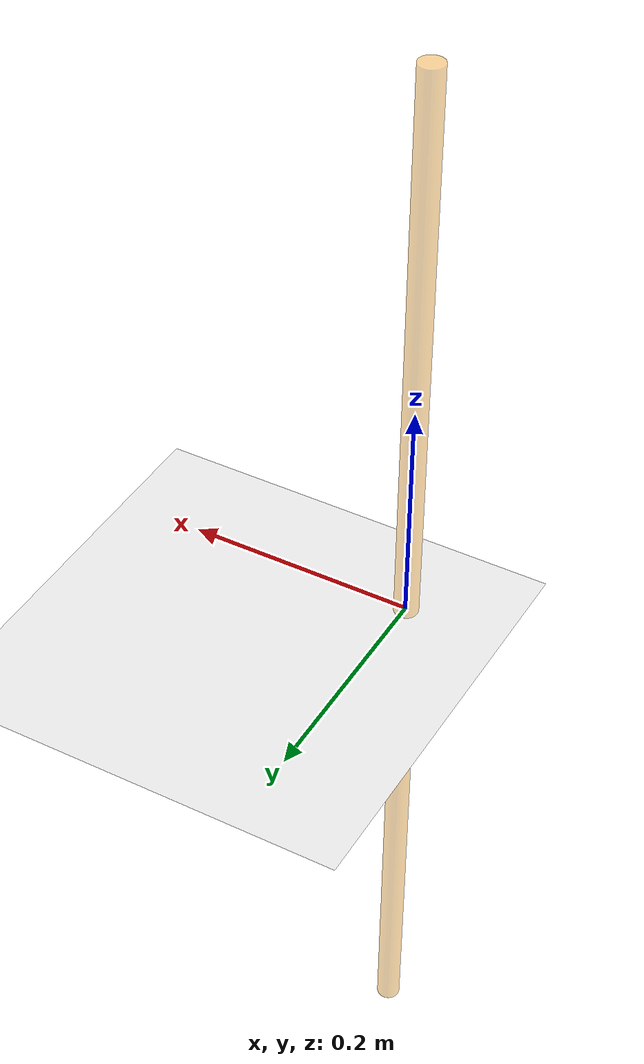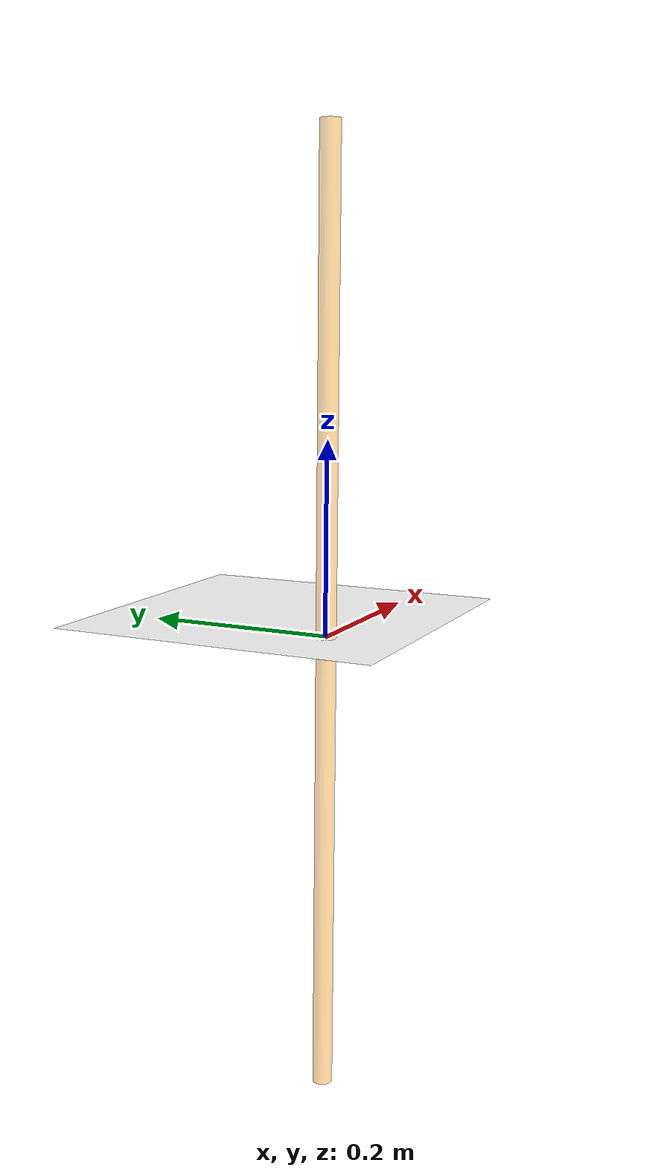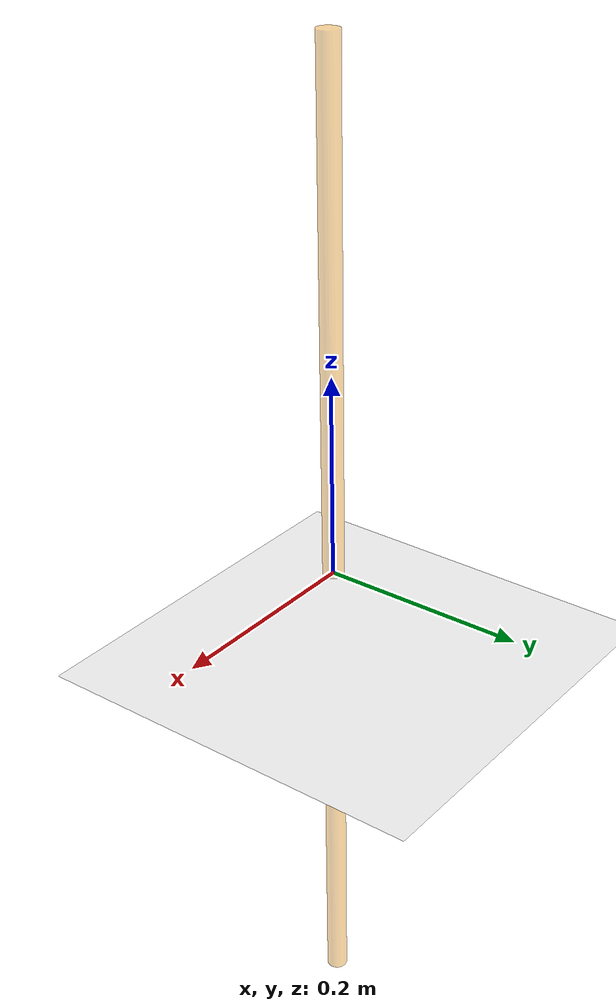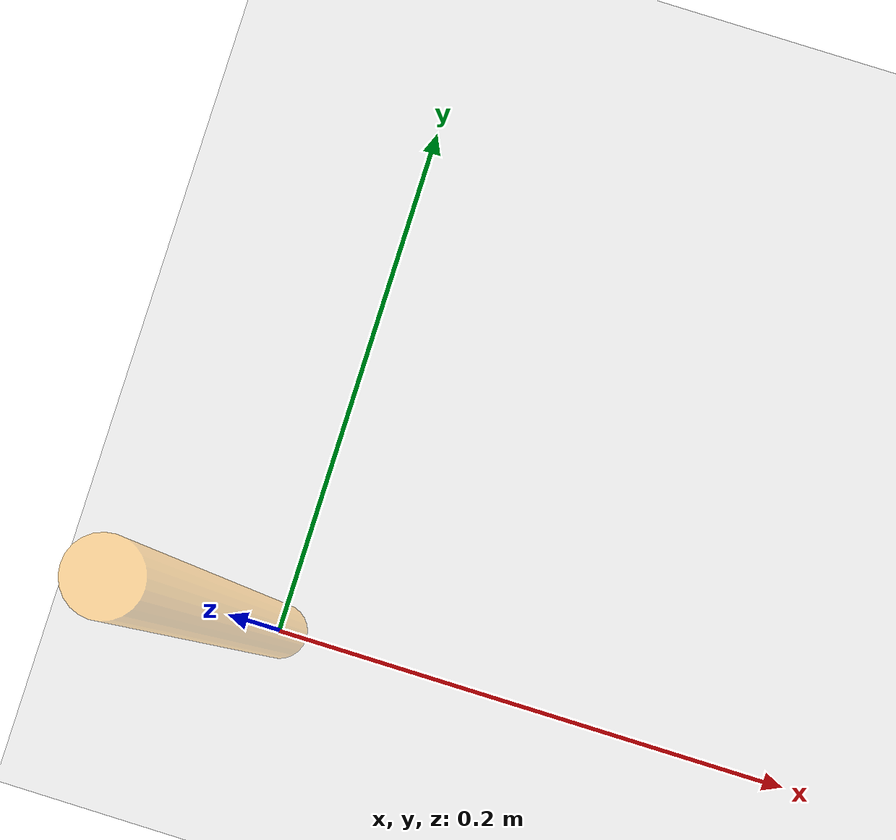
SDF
<sdf version="1.4">
  <!-- We use a custom world for the rrbot so that the camera angle is launched correctly -->

  <world name="default">
    <physics type='ode'>
      <max_step_size>0.001</max_step_size>
      <real_time_factor>1</real_time_factor>
      <real_time_update_rate>10000</real_time_update_rate>
    </physics>
    <include>
      <uri>model://ground_plane</uri>
    </include>

    <!-- Global light source -->
    <include>
      <uri>model://sun</uri>
    </include>
	<model name='TargetMark5'>
      <link name='link_0'>
        <pose frame=''>-0 0 0 0 -0 0</pose>
        <inertial>
          <mass>1</mass>
          <inertia>
            <ixx>0.145833</ixx>
            <ixy>0</ixy>
            <ixz>0</ixz>
            <iyy>0.145833</iyy>
            <iyz>0</iyz>
            <izz>0.125</izz>
          </inertia>
          <pose frame=''>0 0 0 0 -0 0</pose>
        </inertial>
        <gravity>0</gravity>
        <self_collide>0</self_collide>
        <kinematic>0</kinematic>
        <visual name='visual'>
          <pose frame=''>0 0 0 0 -0 0</pose>
          <geometry>
            <cylinder>
              <radius>0.0105</radius>
              <length>1</length>
            </cylinder>
          </geometry>
          <material>
            <lighting>1</lighting>
            <script>
              <uri>file://media/materials/scripts/gazebo.material</uri>
              <name>Gazebo/Grey</name>
            </script>
            <shader type='pixel'>
              <normal_map>__default__</normal_map>
            </shader>
            <ambient>1 0.6 0 1</ambient>
            <diffuse>1 0.6 0 1</diffuse>
            <specular>1 0.6 0 1</specular>
            <emissive>1 0.6 0 1</emissive>
          </material>
          <transparency>0.6</transparency>
          <cast_shadows>1</cast_shadows>
        </visual>
        <collision name='collision'>
          <laser_retro>0</laser_retro>
          <max_contacts>10</max_contacts>
          <pose frame=''>0 0 0 0 -0 0</pose>
          <geometry>
            <cylinder>
              <radius>1e-06</radius>
              <length>0.01</length>
            </cylinder>
          </geometry>
          <surface>
            <friction>
              <ode>
                <mu>1</mu>
                <mu2>1</mu2>
                <fdir1>0 0 0</fdir1>
                <slip1>0</slip1>
                <slip2>0</slip2>
              </ode>
              <torsional>
                <coefficient>1</coefficient>
                <patch_radius>0</patch_radius>
                <surface_radius>0</surface_radius>
                <use_patch_radius>1</use_patch_radius>
                <ode>
                  <slip>0</slip>
                </ode>
              </torsional>
            </friction>
            <bounce>
              <restitution_coefficient>0</restitution_coefficient>
              <threshold>1e+06</threshold>
            </bounce>
            <contact>
              <collide_without_contact>0</collide_without_contact>
              <collide_without_contact_bitmask>1</collide_without_contact_bitmask>
              <collide_bitmask>1</collide_bitmask>
              <ode>
                <soft_cfm>0</soft_cfm>
                <soft_erp>0.2</soft_erp>
                <kp>1e+13</kp>
                <kd>1</kd>
                <max_vel>0.01</max_vel>
                <min_depth>0</min_depth>
              </ode>
              <bullet>
                <split_impulse>1</split_impulse>
                <split_impulse_penetration_threshold>-0.01</split_impulse_penetration_threshold>
                <soft_cfm>0</soft_cfm>
                <soft_erp>0.2</soft_erp>
                <kp>1e+13</kp>
                <kd>1</kd>
              </bullet>
            </contact>
          </surface>
        </collision>
      </link>
      <static>0</static>
      <allow_auto_disable>1</allow_auto_disable>
    </model>

  </world>
</sdf>
